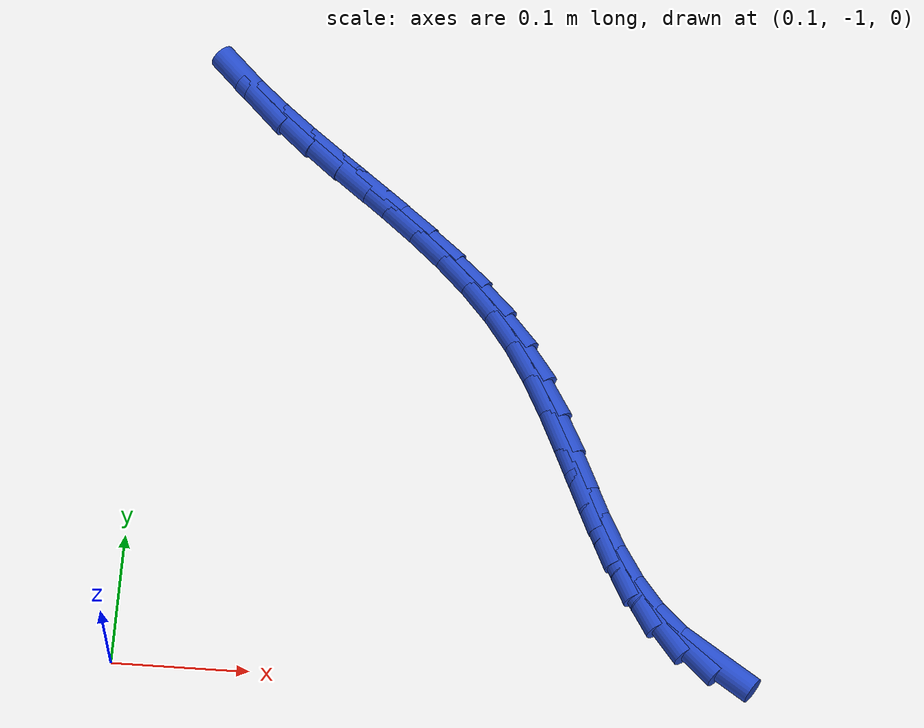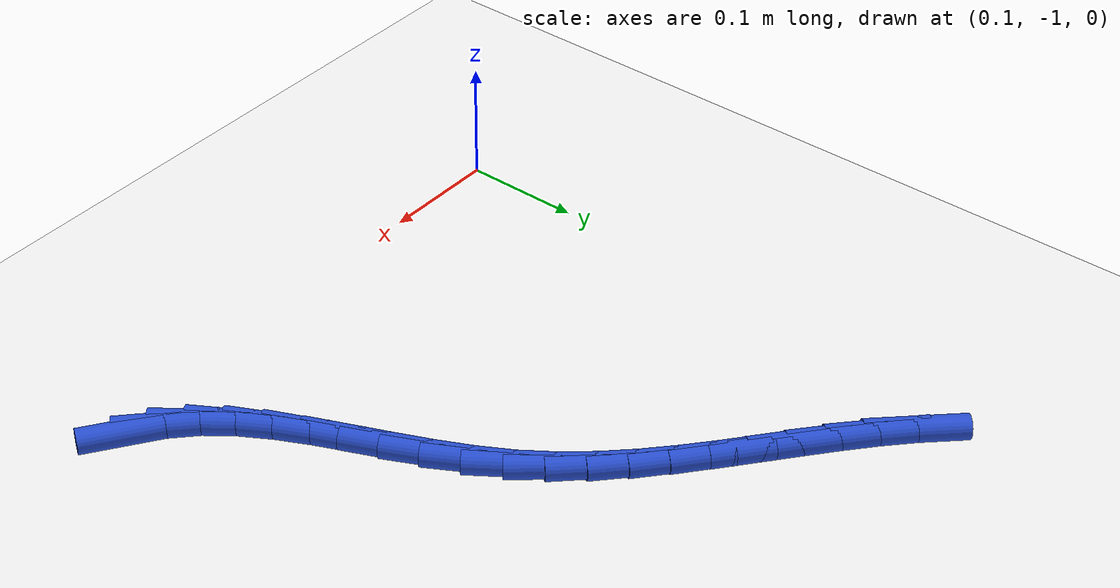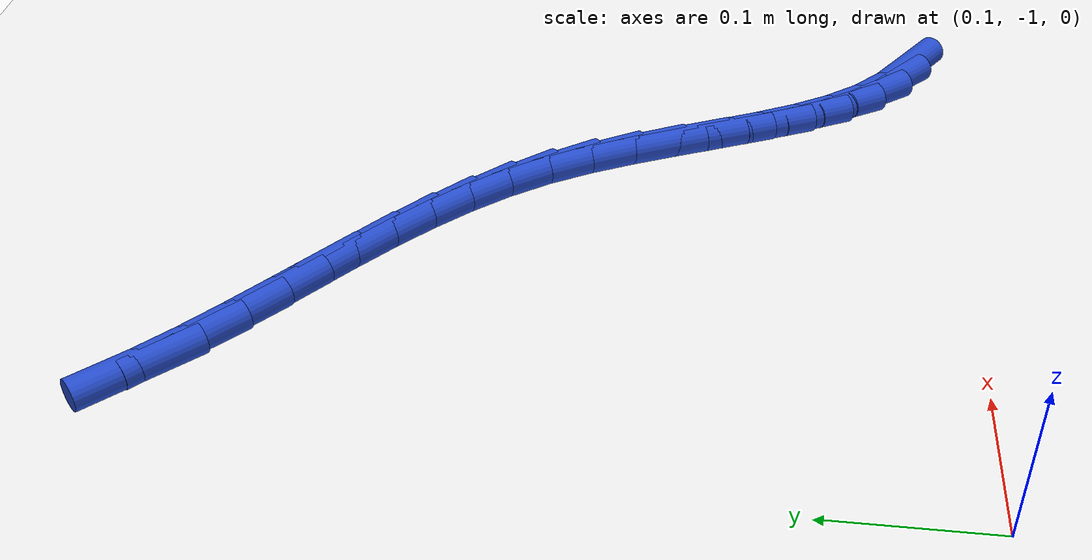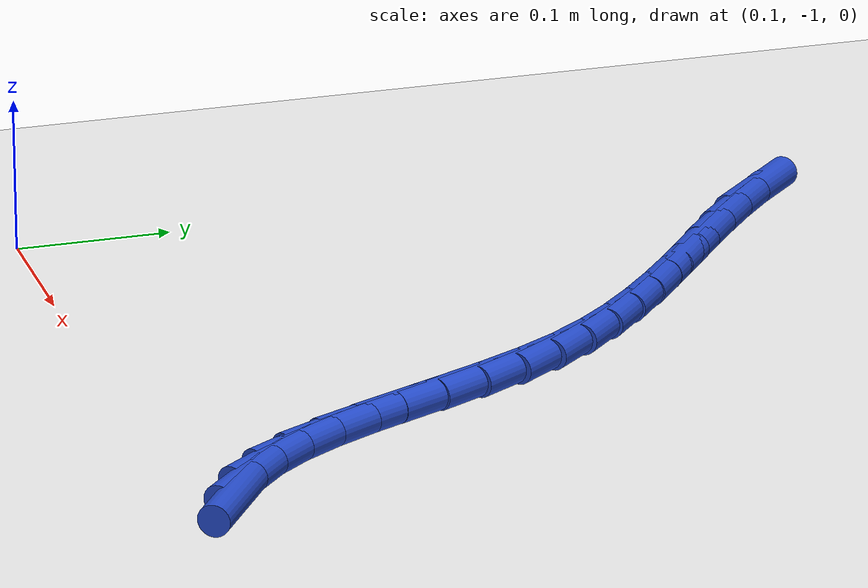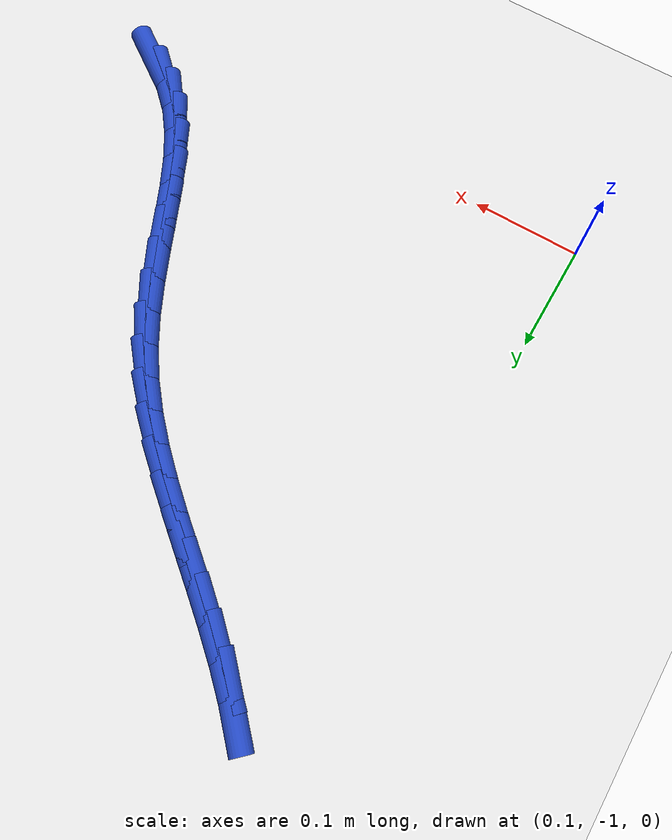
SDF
<sdf version="1.6">
 <world name="default">
  <model name="ground_plane">
   <static>1</static>
   <link name="link">
    <collision name="collision">
     <geometry><plane><normal>0 0 1</normal><size>100 100</size></plane></geometry>
     <surface><friction><ode><mu>100</mu><mu2>50</mu2></ode></friction></surface>
    </collision>
    <visual name="visual">
     <cast_shadows>0</cast_shadows>
     <geometry><plane><normal>0 0 1</normal><size>100 100</size></plane></geometry>
     <material>
      <script><uri>file://media/materials/scripts/gazebo.material</uri><name>Gazebo/WhiteGlow</name></script>
     </material>
    </visual>
   </link>
  </model>
  <model name="line">
   <link name="link_211">
    <pose>0.52962158218471 -0.9714665487093701 0.01 0 1.57 -0.6009986670204286</pose>
    <collision name="collision">
     <geometry><cylinder><radius>0.01</radius><length>0.08</length></cylinder></geometry>
    </collision>
    <visual name="visual">
     <material>
      <script><name>Gazebo/Blue</name><uri>file://media/materials/scripts/gazebo.material</uri></script>
     </material>
     <geometry><cylinder><radius>0.01</radius><length>0.08</length></cylinder></geometry>
    </visual>
   </link>
   <link name="link_212">
    <pose>0.50808865283353 -0.9567034884219928 0.01 0 1.57 -0.7583205133419122</pose>
    <collision name="collision">
     <geometry><cylinder><radius>0.01</radius><length>0.08</length></cylinder></geometry>
    </collision>
    <visual name="visual">
     <material>
      <script><name>Gazebo/Blue</name><uri>file://media/materials/scripts/gazebo.material</uri></script>
     </material>
     <geometry><cylinder><radius>0.01</radius><length>0.08</length></cylinder></geometry>
    </visual>
   </link>
   <link name="link_213">
    <pose>0.48905482491235924 -0.9386735067192616 0.01 0 1.57 -0.9104258100235877</pose>
    <collision name="collision">
     <geometry><cylinder><radius>0.01</radius><length>0.08</length></cylinder></geometry>
    </collision>
    <visual name="visual">
     <material>
      <script><name>Gazebo/Blue</name><uri>file://media/materials/scripts/gazebo.material</uri></script>
     </material>
     <geometry><cylinder><radius>0.01</radius><length>0.08</length></cylinder></geometry>
    </visual>
   </link>
   <link name="link_214">
    <pose>0.4724732364788643 -0.9173247046825421 0.01 0 1.57 -1.0233250353515313</pose>
    <collision name="collision">
     <geometry><cylinder><radius>0.01</radius><length>0.08</length></cylinder></geometry>
    </collision>
    <visual name="visual">
     <material>
      <script><name>Gazebo/Blue</name><uri>file://media/materials/scripts/gazebo.material</uri></script>
     </material>
     <geometry><cylinder><radius>0.01</radius><length>0.08</length></cylinder></geometry>
    </visual>
   </link>
   <link name="link_215">
    <pose>0.4578054001310508 -0.8932645305628254 0.01 0 1.57 -1.0985017305737474</pose>
    <collision name="collision">
     <geometry><cylinder><radius>0.01</radius><length>0.08</length></cylinder></geometry>
    </collision>
    <visual name="visual">
     <material>
      <script><name>Gazebo/Blue</name><uri>file://media/materials/scripts/gazebo.material</uri></script>
     </material>
     <geometry><cylinder><radius>0.01</radius><length>0.08</length></cylinder></geometry>
    </visual>
   </link>
   <link name="link_216">
    <pose>0.4444692040384625 -0.8671589398402698 0.01 0 1.57 -1.1413542431547978</pose>
    <collision name="collision">
     <geometry><cylinder><radius>0.01</radius><length>0.08</length></cylinder></geometry>
    </collision>
    <visual name="visual">
     <material>
      <script><name>Gazebo/Blue</name><uri>file://media/materials/scripts/gazebo.material</uri></script>
     </material>
     <geometry><cylinder><radius>0.01</radius><length>0.08</length></cylinder></geometry>
    </visual>
   </link>
   <link name="link_217">
    <pose>0.4318825363706436 -0.8396738879950338 0.01 0 1.57 -1.1559363711262456</pose>
    <collision name="collision">
     <geometry><cylinder><radius>0.01</radius><length>0.08</length></cylinder></geometry>
    </collision>
    <visual name="visual">
     <material>
      <script><name>Gazebo/Blue</name><uri>file://media/materials/scripts/gazebo.material</uri></script>
     </material>
     <geometry><cylinder><radius>0.01</radius><length>0.08</length></cylinder></geometry>
    </visual>
   </link>
   <link name="link_218">
    <pose>0.41946328529713783 -0.8114753305072758 0.01 0 1.57 -1.1443212272714645</pose>
    <collision name="collision">
     <geometry><cylinder><radius>0.01</radius><length>0.08</length></cylinder></geometry>
    </collision>
    <visual name="visual">
     <material>
      <script><name>Gazebo/Blue</name><uri>file://media/materials/scripts/gazebo.material</uri></script>
     </material>
     <geometry><cylinder><radius>0.01</radius><length>0.08</length></cylinder></geometry>
    </visual>
   </link>
   <link name="link_219">
    <pose>0.4066293389874892 -0.7832292228571541 0.01 0 1.57 -1.1066594096833333</pose>
    <collision name="collision">
     <geometry><cylinder><radius>0.01</radius><length>0.08</length></cylinder></geometry>
    </collision>
    <visual name="visual">
     <material>
      <script><name>Gazebo/Blue</name><uri>file://media/materials/scripts/gazebo.material</uri></script>
     </material>
     <geometry><cylinder><radius>0.01</radius><length>0.08</length></cylinder></geometry>
    </visual>
   </link>
   <link name="link_220">
    <pose>0.3927985856112417 -0.7556015205248274 0.01 0 1.57 -1.0415127013971175</pose>
    <collision name="collision">
     <geometry><cylinder><radius>0.01</radius><length>0.08</length></cylinder></geometry>
    </collision>
    <visual name="visual">
     <material>
      <script><name>Gazebo/Blue</name><uri>file://media/materials/scripts/gazebo.material</uri></script>
     </material>
     <geometry><cylinder><radius>0.01</radius><length>0.08</length></cylinder></geometry>
    </visual>
   </link>
   <link name="link_221">
    <pose>0.37738891333793917 -0.729258178990454 0.01 0 1.57 -0.9527117797090119</pose>
    <collision name="collision">
     <geometry><cylinder><radius>0.01</radius><length>0.08</length></cylinder></geometry>
    </collision>
    <visual name="visual">
     <material>
      <script><name>Gazebo/Blue</name><uri>file://media/materials/scripts/gazebo.material</uri></script>
     </material>
     <geometry><cylinder><radius>0.01</radius><length>0.08</length></cylinder></geometry>
    </visual>
   </link>
   <link name="link_222">
    <pose>0.35994924370866965 -0.7047305443528272 0.01 0 1.57 -0.8688318872339305</pose>
    <collision name="collision">
     <geometry><cylinder><radius>0.01</radius><length>0.08</length></cylinder></geometry>
    </collision>
    <visual name="visual">
     <material>
      <script><name>Gazebo/Blue</name><uri>file://media/materials/scripts/gazebo.material</uri></script>
     </material>
     <geometry><cylinder><radius>0.01</radius><length>0.08</length></cylinder></geometry>
    </visual>
   </link>
   <link name="link_223">
    <pose>0.3406512155553985 -0.6819102509464591 0.01 0 1.57 -0.7998766793992814</pose>
    <collision name="collision">
     <geometry><cylinder><radius>0.01</radius><length>0.08</length></cylinder></geometry>
    </collision>
    <visual name="visual">
     <material>
      <script><name>Gazebo/Blue</name><uri>file://media/materials/scripts/gazebo.material</uri></script>
     </material>
     <geometry><cylinder><radius>0.01</radius><length>0.08</length></cylinder></geometry>
    </visual>
   </link>
   <link name="link_224">
    <pose>0.319851259611437 -0.6604990980796497 0.01 0 1.57 -0.7464746619226968</pose>
    <collision name="collision">
     <geometry><cylinder><radius>0.01</radius><length>0.08</length></cylinder></geometry>
    </collision>
    <visual name="visual">
     <material>
      <script><name>Gazebo/Blue</name><uri>file://media/materials/scripts/gazebo.material</uri></script>
     </material>
     <geometry><cylinder><radius>0.01</radius><length>0.08</length></cylinder></geometry>
    </visual>
   </link>
   <link name="link_225">
    <pose>0.2979058361007468 -0.6401988547652259 0.01 0 1.57 -0.7086493394898302</pose>
    <collision name="collision">
     <geometry><cylinder><radius>0.01</radius><length>0.08</length></cylinder></geometry>
    </collision>
    <visual name="visual">
     <material>
      <script><name>Gazebo/Blue</name><uri>file://media/materials/scripts/gazebo.material</uri></script>
     </material>
     <geometry><cylinder><radius>0.01</radius><length>0.08</length></cylinder></geometry>
    </visual>
   </link>
   <link name="link_226">
    <pose>0.2751714052472891 -0.6207112900160145 0.01 0 1.57 -0.6862029356560138</pose>
    <collision name="collision">
     <geometry><cylinder><radius>0.01</radius><length>0.08</length></cylinder></geometry>
    </collision>
    <visual name="visual">
     <material>
      <script><name>Gazebo/Blue</name><uri>file://media/materials/scripts/gazebo.material</uri></script>
     </material>
     <geometry><cylinder><radius>0.01</radius><length>0.08</length></cylinder></geometry>
    </visual>
   </link>
   <link name="link_227">
    <pose>0.25200442727502553 -0.6017381728448424 0.01 0 1.57 -0.6789880982541113</pose>
    <collision name="collision">
     <geometry><cylinder><radius>0.01</radius><length>0.08</length></cylinder></geometry>
    </collision>
    <visual name="visual">
     <material>
      <script><name>Gazebo/Blue</name><uri>file://media/materials/scripts/gazebo.material</uri></script>
     </material>
     <geometry><cylinder><radius>0.01</radius><length>0.08</length></cylinder></geometry>
    </visual>
   </link>
   <link name="link_228">
    <pose>0.2287613624079174 -0.5829812722645364 0.01 0 1.57 -0.6870651833773846</pose>
    <collision name="collision">
     <geometry><cylinder><radius>0.01</radius><length>0.08</length></cylinder></geometry>
    </collision>
    <visual name="visual">
     <material>
      <script><name>Gazebo/Blue</name><uri>file://media/materials/scripts/gazebo.material</uri></script>
     </material>
     <geometry><cylinder><radius>0.01</radius><length>0.08</length></cylinder></geometry>
    </visual>
   </link>
   <link name="link_229">
    <pose>0.2057986708699259 -0.5641423572879231 0.01 0 1.57 -0.7107580185534519</pose>
    <collision name="collision">
     <geometry><cylinder><radius>0.01</radius><length>0.08</length></cylinder></geometry>
    </collision>
    <visual name="visual">
     <material>
      <script><name>Gazebo/Blue</name><uri>file://media/materials/scripts/gazebo.material</uri></script>
     </material>
     <geometry><cylinder><radius>0.01</radius><length>0.08</length></cylinder></geometry>
    </visual>
   </link>
   <link name="link_230">
    <pose>0.18347281288501258 -0.5449231969278291 0.01 0 1.57 -0.7506093794584169</pose>
    <collision name="collision">
     <geometry><cylinder><radius>0.01</radius><length>0.08</length></cylinder></geometry>
    </collision>
    <visual name="visual">
     <material>
      <script><name>Gazebo/Blue</name><uri>file://media/materials/scripts/gazebo.material</uri></script>
     </material>
     <geometry><cylinder><radius>0.01</radius><length>0.08</length></cylinder></geometry>
    </visual>
   </link>
   <link name="link_231">
    <pose>0.1621402486771388 -0.5250255601970814 0.01 0 1.57 -0.8072154543371513</pose>
    <collision name="collision">
     <geometry><cylinder><radius>0.01</radius><length>0.08</length></cylinder></geometry>
    </collision>
    <visual name="visual">
     <material>
      <script><name>Gazebo/Blue</name><uri>file://media/materials/scripts/gazebo.material</uri></script>
     </material>
     <geometry><cylinder><radius>0.01</radius><length>0.08</length></cylinder></geometry>
    </visual>
   </link>
  </model>
 </world>
</sdf>
